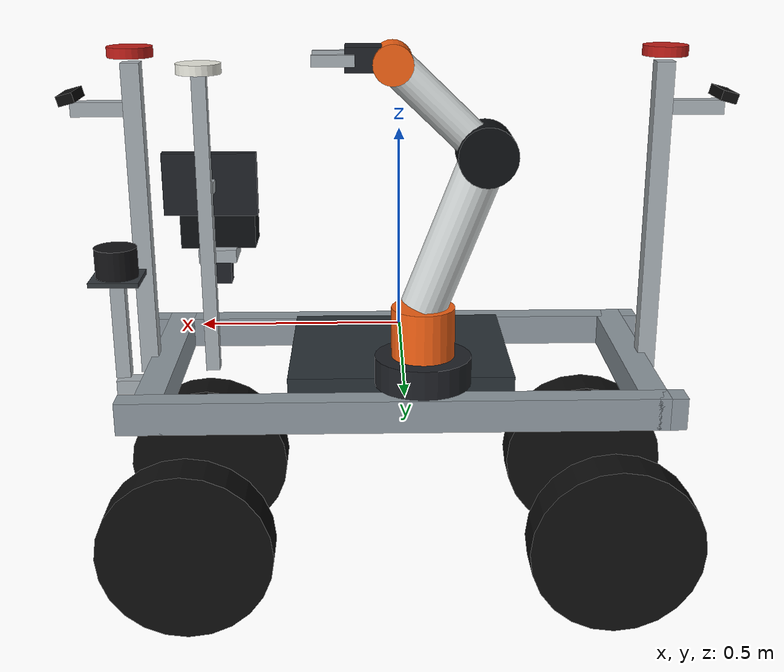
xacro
<?xml version='1.0' encoding='utf-8'?>
<robot xmlns:xacro="http://www.ros.org/wiki/xacro" name="amiga_gazebo_sim">

  <xacro:property name="wheelbase" value="1.07" />
  <xacro:property name="track_width" value="0.55" />
  <xacro:property name="wheel_radius" value="0.22" />
  <xacro:property name="wheel_width" value="0.11" />

  <xacro:property name="base_length" value="1.41" />
  <xacro:property name="base_width" value="0.80" />
  <xacro:property name="base_height" value="0.20" />

  <material name="blue">
    <color rgba="0.1 0.3 0.8 1.0" />
  </material>

  <material name="black">
    <color rgba="0.05 0.05 0.05 1.0" />
  </material>

  <link name="base_footprint" />

  <link name="base_link">

    <collision>
      <origin xyz="0 0 0" rpy="0 0 0" />
      <geometry>
        <box size="${base_length} ${base_width} ${base_height}" />
      </geometry>
    </collision>

    <inertial>
      <origin xyz="0 0 0" rpy="0 0 0" />
      <mass value="20.0" />

      <inertia ixx="1.0" ixy="0.0" ixz="0.0" iyy="2.5" iyz="0.0" izz="3.0" />
    </inertial>

  <visual name="left_frame_rail"><origin xyz="0 0.31 -0.12" rpy="0 0 0" /><geometry><box size="1.35 0.06 0.08" /></geometry><material name="left_frame_rail_material"><color rgba="0.55 0.59 0.62 1" /></material></visual><visual name="right_frame_rail"><origin xyz="0 -0.31 -0.12" rpy="0 0 0" /><geometry><box size="1.35 0.06 0.08" /></geometry><material name="right_frame_rail_material"><color rgba="0.55 0.59 0.62 1" /></material></visual><visual name="front_crossmember"><origin xyz="0.6 0 -0.12" rpy="0 0 0" /><geometry><box size="0.07 0.68 0.08" /></geometry><material name="front_crossmember_material"><color rgba="0.55 0.59 0.62 1" /></material></visual><visual name="rear_crossmember"><origin xyz="-0.6 0 -0.12" rpy="0 0 0" /><geometry><box size="0.07 0.68 0.08" /></geometry><material name="rear_crossmember_material"><color rgba="0.55 0.59 0.62 1" /></material></visual><visual name="equipment_plate"><origin xyz="0 0 -0.08" rpy="0 0 0" /><geometry><box size="0.55 0.48 0.04" /></geometry><material name="equipment_plate_material"><color rgba="0.16 0.19 0.21 1" /></material></visual><visual name="front_aluminum_mast"><origin xyz="0.64 0 0.27" rpy="0 0 0" /><geometry><box size="0.045 0.045 0.78" /></geometry><material name="front_aluminum_mast_material"><color rgba="0.65 0.68 0.70 1" /></material></visual><visual name="rear_aluminum_mast"><origin xyz="-0.64 0 0.27" rpy="0 0 0" /><geometry><box size="0.045 0.045 0.78" /></geometry><material name="rear_aluminum_mast_material"><color rgba="0.65 0.68 0.70 1" /></material></visual><visual name="front_camera_bracket"><origin xyz="0.715 0 0.55" rpy="0 0 0" /><geometry><box size="0.15 0.035 0.035" /></geometry><material name="front_camera_bracket_material"><color rgba="0.65 0.68 0.70 1" /></material></visual><visual name="rear_camera_bracket"><origin xyz="-0.715 0 0.55" rpy="0 0 0" /><geometry><box size="0.15 0.035 0.035" /></geometry><material name="rear_camera_bracket_material"><color rgba="0.65 0.68 0.70 1" /></material></visual><visual name="white_gnss_support"><origin xyz="0.48 0 0.255" rpy="0 0 0" /><geometry><box size="0.035 0.035 0.75" /></geometry><material name="white_gnss_support_silver"><color rgba="0.65 0.68 0.70 1" /></material></visual><visual name="lidar_support_column"><origin xyz="0.680 0.150 0.047" rpy="0 0 0" /><geometry><box size="0.035 0.035 0.254" /></geometry><material name="lidar_support_column_material"><color rgba="0.65 0.68 0.70 1" /></material></visual><visual name="lidar_mounting_plate"><origin xyz="0.680 0.150 0.168" rpy="0 0 0" /><geometry><box size="0.120 0.120 0.012" /></geometry><material name="lidar_mounting_plate_material"><color rgba="0.20 0.22 0.24 1" /></material></visual><visual name="brain_display_support"><origin xyz="0.48 -0.05 0.34" rpy="0 0 0" /><geometry><box size="0.03 0.10 0.03" /></geometry><material name="brain_display_support_material"><color rgba="0.65 0.68 0.70 1" /></material></visual><visual name="brain_display_housing"><origin xyz="0.48 -0.115 0.34" rpy="0 0 0" /><geometry><box size="0.24 0.03 0.16" /></geometry><material name="brain_display_housing_material"><color rgba="0.12 0.13 0.15 1" /></material></visual><visual name="brain_display_screen"><origin xyz="0.48 -0.132 0.34" rpy="0 0 0" /><geometry><box size="0.21 0.003 0.13" /></geometry><material name="brain_display_screen_material"><color rgba="0.08 0.18 0.24 1" /></material></visual><visual name="arm_mount_base"><origin xyz="-0.050000 0.270000 -0.025000" rpy="0.000000 0.000000 0.000000" /><geometry><cylinder radius="0.115" length="0.07" /></geometry><material name="arm_mount_base_material"><color rgba="0.12 0.13 0.15 1" /></material></visual><visual name="arm_rotating_pedestal"><origin xyz="-0.050000 0.270000 0.070000" rpy="0.000000 0.000000 0.000000" /><geometry><cylinder radius="0.075" length="0.12" /></geometry><material name="arm_rotating_pedestal_material"><color rgba="0.95 0.38 0.08 1" /></material></visual><visual name="arm_upper_link"><origin xyz="-0.120000 0.270000 0.310000" rpy="0.000000 0.370891 3.141593" /><geometry><cylinder radius="0.055" length="0.3862641583165593" /></geometry><material name="arm_upper_link_material"><color rgba="0.82 0.84 0.84 1" /></material></visual><visual name="arm_elbow_joint"><origin xyz="-0.190000 0.270000 0.490000" rpy="1.570796 0.000000 0.000000" /><geometry><cylinder radius="0.068" length="0.12" /></geometry><material name="arm_elbow_joint_material"><color rgba="0.05 0.06 0.07 1" /></material></visual><visual name="arm_forearm_link"><origin xyz="-0.085000 0.270000 0.590000" rpy="0.000000 0.809784 0.000000" /><geometry><cylinder radius="0.042" length="0.29" /></geometry><material name="arm_forearm_link_material"><color rgba="0.82 0.84 0.84 1" /></material></visual><visual name="arm_wrist_joint"><origin xyz="0.020000 0.270000 0.690000" rpy="1.570796 0.000000 0.000000" /><geometry><cylinder radius="0.045" length="0.1" /></geometry><material name="arm_wrist_joint_material"><color rgba="0.95 0.38 0.08 1" /></material></visual><visual name="arm_gripper_body"><origin xyz="0.075000 0.270000 0.700000" rpy="0.000000 0.000000 0.000000" /><geometry><box size="0.1 0.075 0.055" /></geometry><material name="arm_gripper_body_material"><color rgba="0.12 0.13 0.15 1" /></material></visual><visual name="arm_gripper_left_finger"><origin xyz="0.150000 0.315000 0.700000" rpy="0.000000 0.000000 0.000000" /><geometry><box size="0.095 0.018 0.025" /></geometry><material name="arm_gripper_left_finger_material"><color rgba="0.65 0.68 0.70 1" /></material></visual><visual name="arm_gripper_right_finger"><origin xyz="0.150000 0.225000 0.700000" rpy="0.000000 0.000000 0.000000" /><geometry><box size="0.095 0.018 0.025" /></geometry><material name="arm_gripper_right_finger_material"><color rgba="0.65 0.68 0.70 1" /></material></visual><visual name="remote_mount"><origin xyz="0.480000 -0.255000 0.125000" rpy="0.000000 0.000000 0.000000" /><geometry><box size="0.1 0.13 0.035" /></geometry><material name="remote_mount_material"><color rgba="0.65 0.68 0.70 1" /></material></visual><visual name="remote_body"><origin xyz="0.480000 -0.285000 0.205000" rpy="0.000000 0.000000 0.000000" /><geometry><box size="0.2 0.12 0.13" /></geometry><material name="remote_body_material"><color rgba="0.05 0.06 0.07 1" /></material></visual><visual name="remote_small_screen"><origin xyz="0.480000 -0.349000 0.235000" rpy="0.000000 0.000000 0.000000" /><geometry><box size="0.145 0.004 0.07" /></geometry><material name="remote_small_screen_material"><color rgba="0.07 0.22 0.28 1" /></material></visual><visual name="remote_handle"><origin xyz="0.480000 -0.285000 0.095000" rpy="0.000000 0.000000 0.000000" /><geometry><box size="0.055 0.055 0.13" /></geometry><material name="remote_handle_material"><color rgba="0.12 0.13 0.15 1" /></material></visual><visual name="remote_joystick"><origin xyz="0.545000 -0.352000 0.175000" rpy="1.570796 0.000000 0.000000" /><geometry><cylinder radius="0.014" length="0.045" /></geometry><material name="remote_joystick_material"><color rgba="0.95 0.38 0.08 1" /></material></visual><visual name="lidar_frame_connector"><origin xyz="0.645000 0.150000 -0.105000" rpy="0.000000 0.000000 0.000000" /><geometry><box size="0.105 0.045 0.035" /></geometry><material name="lidar_frame_connector_material"><color rgba="0.65 0.68 0.70 1" /></material></visual></link>

  <joint name="base_footprint_joint" type="fixed">
    <parent link="base_link" />
    <child link="base_footprint" />
    <origin xyz="0 0 -0.715" rpy="0 0 0" />
  </joint>

  <xacro:macro name="wheel" params="prefix x y">

    <link name="${prefix}_wheel_link">

      <visual>

        <origin xyz="0 0 0" rpy="1.57079632679 0 0" />
        <geometry>
          <cylinder radius="${wheel_radius}" length="${wheel_width}" />
        </geometry>
        <material name="black" />
      </visual>

      <collision>
        <origin xyz="0 0 0" rpy="1.57079632679 0 0" />
        <geometry>
          <cylinder radius="${wheel_radius}" length="${wheel_width}" />
        </geometry>
      </collision>

      <inertial>
        <origin xyz="0 0 0" rpy="0 0 0" />
        <mass value="2.0" />

        <inertia ixx="0.03" ixy="0.0" ixz="0.0" iyy="0.05" iyz="0.0" izz="0.03" />
      </inertial>

    </link>

    <joint name="${prefix}_wheel_joint" type="continuous">

      <parent link="base_link" />
      <child link="${prefix}_wheel_link" />

      <origin xyz="${x} ${y} -0.495" rpy="0 0 0" />
      <axis xyz="0 1 0" />

    </joint>

  </xacro:macro>

  <xacro:wheel prefix="front_left" x="${wheelbase / 2.0}" y="${track_width / 2.0}" />

  <xacro:wheel prefix="front_right" x="${wheelbase / 2.0}" y="${-track_width / 2.0}" />

  <xacro:wheel prefix="rear_left" x="${-wheelbase / 2.0}" y="${track_width / 2.0}" />

  <xacro:wheel prefix="rear_right" x="${-wheelbase / 2.0}" y="${-track_width / 2.0}" />

  <link name="front_camera_link">

    <visual>
      <origin xyz="0 0 0" rpy="0 0 0" />
      <geometry>
        <box size="0.04 0.115 0.025" />
      </geometry>
      <material name="black" />
    </visual>

  </link>

  <joint name="front_camera_joint" type="fixed">

    <parent link="base_link" />
    <child link="front_camera_link" />

    <origin xyz="0.79 0 0.58" rpy="0 0.2618 0" />

  </joint>

  <link name="front_camera_right_frame" />

  <joint name="front_camera_right_joint" type="fixed">

    <parent link="front_camera_link" />
    <child link="front_camera_right_frame" />

    <origin xyz="0.0002830922 -0.0376089215 -0.0001362767" rpy="0.01093888 -0.01895032 0.00408157" />

  </joint>

  <link name="front_camera_right_optical_frame" />

  <joint name="front_camera_right_optical_joint" type="fixed">

    <parent link="front_camera_right_frame" />
    <child link="front_camera_right_optical_frame" />

    <origin xyz="0 0 0" rpy="-1.57079632679 0 -1.57079632679" />

  </joint>

  <link name="front_camera_depth_optical_frame" />

  <joint name="front_camera_depth_optical_joint" type="fixed">

    <parent link="front_camera_right_optical_frame" />
    <child link="front_camera_depth_optical_frame" />

    <origin xyz="0 0 0" rpy="0.00138700 -0.01342679 -0.00183043" />

  </joint>

  <link name="rear_camera_link">

    <visual>
      <origin xyz="0 0 0" rpy="0 0 0" />
      <geometry>
        <box size="0.04 0.115 0.025" />
      </geometry>
      <material name="black" />
    </visual>

  </link>

  <joint name="rear_camera_joint" type="fixed">

    <parent link="base_link" />
    <child link="rear_camera_link" />

    <origin xyz="-0.79 0 0.58" rpy="0 0.2618 3.14159" />

  </joint>

  <link name="rear_camera_right_frame" />

  <joint name="rear_camera_right_joint" type="fixed">

    <parent link="rear_camera_link" />
    <child link="rear_camera_right_frame" />

    <origin xyz="-0.000351802 -0.037616639 -0.000164001" rpy="0.04121807 -0.00155343 -0.03745893" />

  </joint>

  <link name="rear_camera_right_optical_frame" />

  <joint name="rear_camera_right_optical_joint" type="fixed">

    <parent link="rear_camera_right_frame" />
    <child link="rear_camera_right_optical_frame" />

    <origin xyz="0 0 0" rpy="-1.57079632679 0 -1.57079632679" />

  </joint>

  <link name="rear_camera_depth_optical_frame" />

  <joint name="rear_camera_depth_optical_joint" type="fixed">

    <parent link="rear_camera_right_optical_frame" />
    <child link="rear_camera_depth_optical_frame" />

    <origin xyz="0 0 0" rpy="-0.00022543 -0.02808973 -0.00469591" />

  </joint>

  <link name="imu_link" />

  <joint name="imu_joint" type="fixed">

    <parent link="base_link" />
    <child link="imu_link" />

    <origin xyz="0 0 0" rpy="0 0 0" />

  </joint>

  <link name="gps_link"><visual name="primary_gnss_antenna"><origin xyz="0 0 0" rpy="0 0 0" /><geometry><cylinder radius="0.055" length="0.025" /></geometry><material name="primary_gnss_antenna_material"><color rgba="0.75 0.12 0.10 1" /></material></visual></link>

  <joint name="gps_joint" type="fixed">

    <parent link="base_link" />
    <child link="gps_link" />

    <origin xyz="0.640 0 0.685" rpy="0 0 0" />

  </joint>

  <link name="white_gnss_link"><visual name="white_gnss_antenna"><origin xyz="0 0 0" rpy="0 0 0" /><geometry><cylinder radius="0.055" length="0.025" /></geometry><material name="white_gnss_antenna_material"><color rgba="0.92 0.92 0.88 1" /></material></visual></link>

  <joint name="white_gnss_joint" type="fixed">

    <parent link="base_link" />
    <child link="white_gnss_link" />

    <origin xyz="0.480 0 0.645" rpy="0 0 0" />

  </joint>

  <link name="velodyne"><visual name="vlp16_body"><origin xyz="0 0 0" rpy="0 0 0" /><geometry><cylinder radius="0.0515" length="0.072" /></geometry><material name="vlp16_black"><color rgba="0.08 0.08 0.09 1" /></material></visual></link>

  <joint name="velodyne_joint" type="fixed">

    <parent link="base_link" />
    <child link="velodyne" />

    <origin xyz="0.680 0.150 0.210" rpy="0 0 -1.228" />

  </joint>

  <gazebo>
    <plugin filename="gz-sim-diff-drive-system" name="gz::sim::systems::DiffDrive">

      <left_joint>front_left_wheel_joint</left_joint>
      <left_joint>rear_left_wheel_joint</left_joint>

      <right_joint>front_right_wheel_joint</right_joint>
      <right_joint>rear_right_wheel_joint</right_joint>

      <wheel_separation>0.55</wheel_separation>
      <wheel_radius>0.22</wheel_radius>

      <topic>/model/amiga/cmd_vel</topic>
      <odom_topic>/model/amiga/odometry</odom_topic>

      <max_linear_velocity>0.5</max_linear_velocity>
      <max_angular_velocity>0.5</max_angular_velocity>
    </plugin>
  </gazebo>

<link name="gps_secondary_link"><visual name="rear_sbg_antenna"><origin xyz="0 0 0" rpy="0 0 0" /><geometry><cylinder radius="0.055" length="0.025" /></geometry><material name="rear_sbg_antenna_material"><color rgba="0.75 0.12 0.10 1" /></material></visual></link><joint name="gps_secondary_joint" type="fixed"><parent link="base_link" /><child link="gps_secondary_link" /><origin xyz="-0.640 0 0.685" rpy="0 0 0" /></joint></robot>
